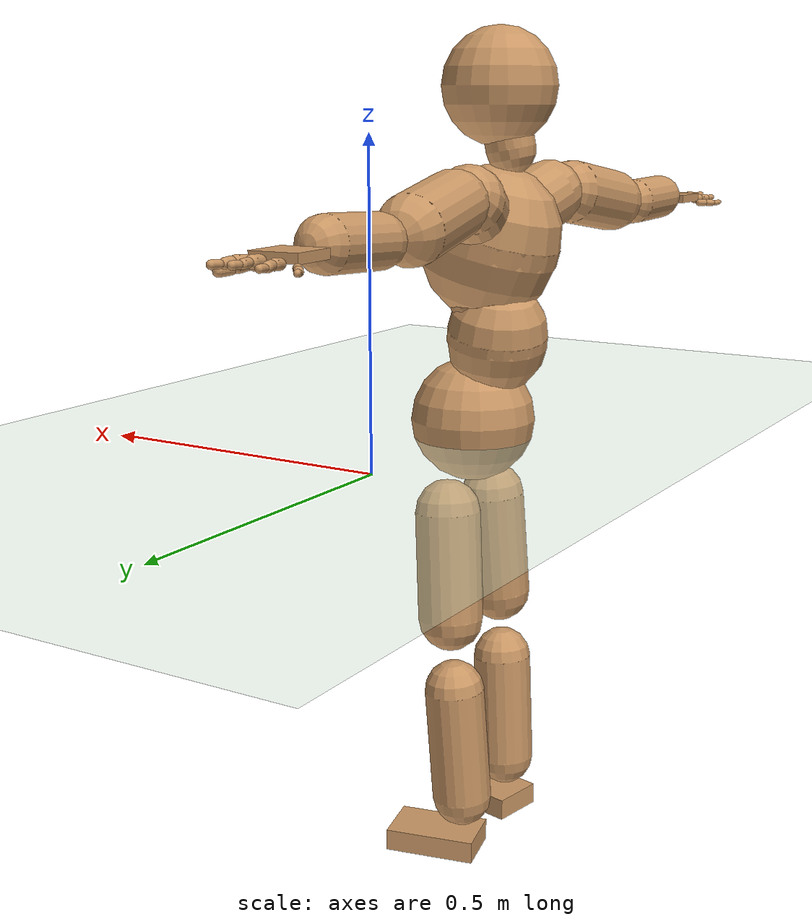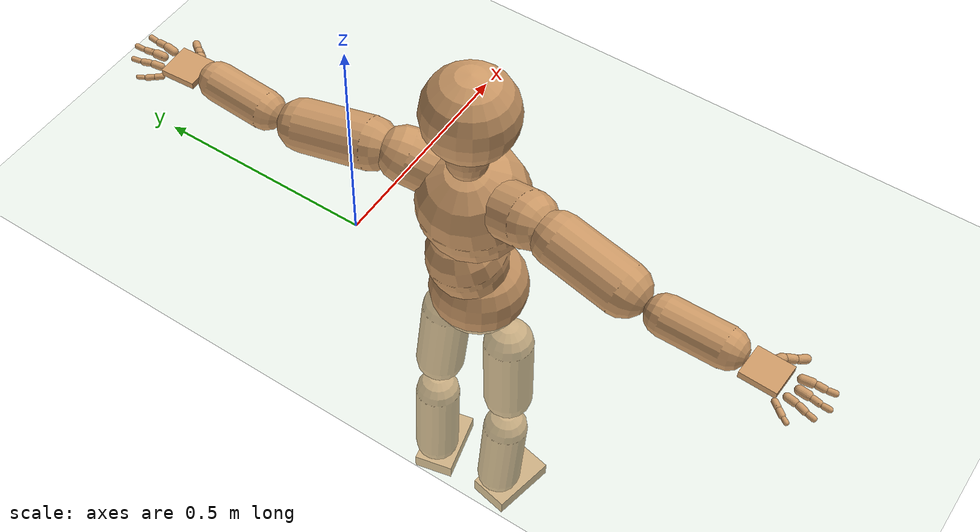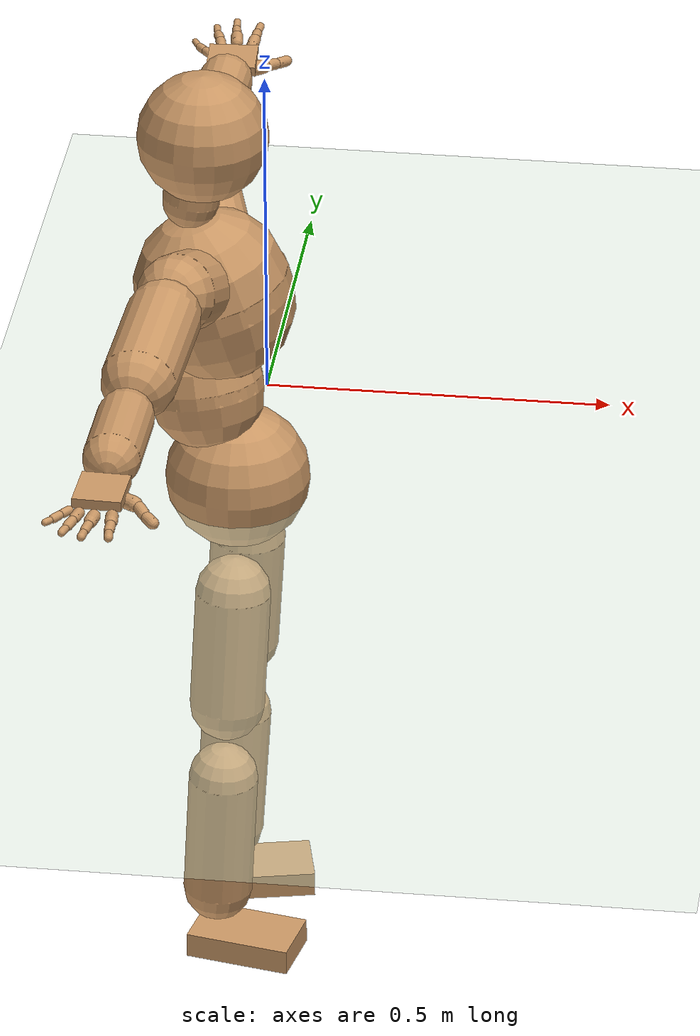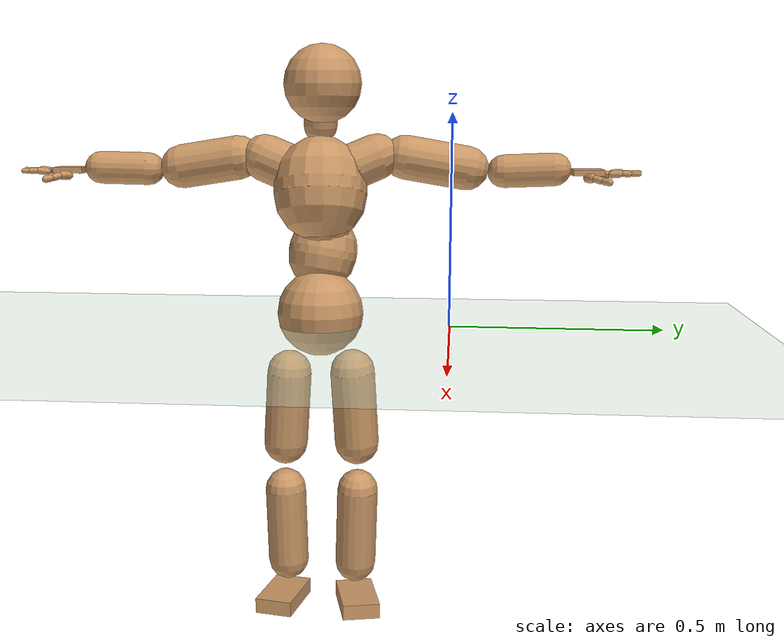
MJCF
<mujoco model="humanoid">
  <compiler coordinate="local" angle="radian"/>
  <default>
    <joint damping="0.0" armature="0.01" stiffness="0.0" limited="true"/>
    <geom conaffinity="1" condim="3" contype="7" margin="0.001" rgba="0.8 0.6 .4 1"/>
  </default>
  <asset>
    <texture type="skybox" builtin="gradient" rgb1=".4 .5 .6" rgb2="0 0 0" width="100" height="100"/>
    <texture builtin="flat" height="1278" mark="cross" markrgb="1 1 1" name="texgeom" random="0.01" rgb1="0.8 0.6 0.4" rgb2="0.8 0.6 0.4" type="cube" width="127"/>
    <texture builtin="checker" height="100" name="texplane" rgb1="0 0 0" rgb2="0.8 0.8 0.8" type="2d" width="100"/>
    <material name="MatPlane" reflectance="0.5" shininess="1" specular="1" texrepeat="60 60" texture="texplane"/>
    <material name="geom" texture="texgeom" texuniform="true"/>
  </asset>
  <worldbody>
    <light cutoff="100" diffuse="1 1 1" dir="-0 0 -1.3" directional="true" exponent="1" pos="0 0 1.3" specular=".1 .1 .1"/>
    <geom conaffinity="1" condim="3" name="floor" pos="0 0 0" rgba="0.8 0.9 0.8 1" size="100 100 .2" type="plane" material="MatPlane"/>
    <body name="Pelvis" pos="0.0002 -0.3093 0.0293">
      <freejoint name="Pelvis"/>
      <geom type="sphere" contype="1" conaffinity="1" density="500" size="0.1035" pos="0.0000 0.0000 0.0000" name="Pelvis"/>
      <body name="L_Hip" pos="0.0069 0.0745 -0.0832">
        <joint name="L_Hip_x" type="hinge" pos="0 0 0" axis="1 0 0" stiffness="800" damping="80" armature="0.02" range="-180.0000 180.0000"/>
        <joint name="L_Hip_y" type="hinge" pos="0 0 0" axis="0 1 0" stiffness="800" damping="80" armature="0.02" range="-180.0000 180.0000"/>
        <joint name="L_Hip_z" type="hinge" pos="0 0 0" axis="0 0 1" stiffness="800" damping="80" armature="0.02" range="-180.0000 180.0000"/>
        <geom type="capsule" contype="1" conaffinity="1" density="500" fromto="-0.0041 0.0032 -0.0605 -0.0164 0.0128 -0.2419" size="0.054" name="L_Hip"/>
        <body name="L_Knee" pos="-0.0205 0.0159 -0.3024">
          <joint name="L_Knee_x" type="hinge" pos="0 0 0" axis="1 0 0" stiffness="800" damping="80" armature="0.02" range="-180.0000 180.0000"/>
          <joint name="L_Knee_y" type="hinge" pos="0 0 0" axis="0 1 0" stiffness="800" damping="80" armature="0.02" range="-180.0000 180.0000"/>
          <joint name="L_Knee_z" type="hinge" pos="0 0 0" axis="0 0 1" stiffness="800" damping="80" armature="0.02" range="-180.0000 180.0000"/>
          <geom type="capsule" contype="1" conaffinity="1" density="500" fromto="-0.0041 -0.0022 -0.0651 -0.0165 -0.0087 -0.2605" size="0.0501" name="L_Knee"/>
          <body name="L_Ankle" pos="-0.0206 -0.0109 -0.3257">
            <joint name="L_Ankle_x" type="hinge" pos="0 0 0" axis="1 0 0" stiffness="800" damping="80" armature="0.02" range="-180.0000 180.0000"/>
            <joint name="L_Ankle_y" type="hinge" pos="0 0 0" axis="0 1 0" stiffness="800" damping="80" armature="0.02" range="-180.0000 180.0000"/>
            <joint name="L_Ankle_z" type="hinge" pos="0 0 0" axis="0 0 1" stiffness="800" damping="80" armature="0.02" range="-180.0000 180.0000"/>
            <geom type="box" contype="1" conaffinity="1" density="500" pos="0.0489 0.0111 -0.0177" size="0.0762 0.0455 0.0184" quat="0.9938 0.0000 0.0000 0.1115" name="L_Ankle"/>
            <body name="L_Toe" pos="0.0978 0.0222 -0.0353">
              <joint name="L_Toe_x" type="hinge" pos="0 0 0" axis="1 0 0" stiffness="500" damping="50" armature="0.02" range="-180.0000 180.0000"/>
              <joint name="L_Toe_y" type="hinge" pos="0 0 0" axis="0 1 0" stiffness="500" damping="50" armature="0.02" range="-180.0000 180.0000"/>
              <joint name="L_Toe_z" type="hinge" pos="0 0 0" axis="0 0 1" stiffness="500" damping="50" armature="0.02" range="-180.0000 180.0000"/>
              <geom type="box" contype="1" conaffinity="1" density="500" pos="0.0000 0.0000 0.0192" size="0.0009 0.0022 0.001" quat="0.9929 0.0000 0.0000 0.1188" name="L_Toe"/>
            </body>
          </body>
        </body>
      </body>
      <body name="R_Hip" pos="0.0054 -0.0726 -0.0887">
        <joint name="R_Hip_x" type="hinge" pos="0 0 0" axis="1 0 0" stiffness="800" damping="80" armature="0.02" range="-180.0000 180.0000"/>
        <joint name="R_Hip_y" type="hinge" pos="0 0 0" axis="0 1 0" stiffness="800" damping="80" armature="0.02" range="-180.0000 180.0000"/>
        <joint name="R_Hip_z" type="hinge" pos="0 0 0" axis="0 0 1" stiffness="800" damping="80" armature="0.02" range="-180.0000 180.0000"/>
        <geom type="capsule" contype="1" conaffinity="1" density="500" fromto="-0.0029 -0.0040 -0.0598 -0.0116 -0.0160 -0.2391" size="0.0538" name="R_Hip"/>
        <body name="R_Knee" pos="-0.0145 -0.02 -0.2989">
          <joint name="R_Knee_x" type="hinge" pos="0 0 0" axis="1 0 0" stiffness="800" damping="80" armature="0.02" range="-180.0000 180.0000"/>
          <joint name="R_Knee_y" type="hinge" pos="0 0 0" axis="0 1 0" stiffness="800" damping="80" armature="0.02" range="-180.0000 180.0000"/>
          <joint name="R_Knee_z" type="hinge" pos="0 0 0" axis="0 0 1" stiffness="800" damping="80" armature="0.02" range="-180.0000 180.0000"/>
          <geom type="capsule" contype="1" conaffinity="1" density="500" fromto="-0.0034 0.0012 -0.0635 -0.0138 0.0049 -0.2539" size="0.0501" name="R_Knee"/>
          <body name="R_Ankle" pos="-0.0172 0.0061 -0.3174">
            <joint name="R_Ankle_x" type="hinge" pos="0 0 0" axis="1 0 0" stiffness="800" damping="80" armature="0.02" range="-180.0000 180.0000"/>
            <joint name="R_Ankle_y" type="hinge" pos="0 0 0" axis="0 1 0" stiffness="800" damping="80" armature="0.02" range="-180.0000 180.0000"/>
            <joint name="R_Ankle_z" type="hinge" pos="0 0 0" axis="0 0 1" stiffness="800" damping="80" armature="0.02" range="-180.0000 180.0000"/>
            <geom type="box" contype="1" conaffinity="1" density="500" pos="0.0461 -0.0093 -0.0193" size="0.0762 0.0455 0.0184" quat="0.9951 0.0000 0.0000 -0.0989" name="R_Ankle"/>
            <body name="R_Toe" pos="0.0923 -0.0185 -0.0387">
              <joint name="R_Toe_x" type="hinge" pos="0 0 0" axis="1 0 0" stiffness="500" damping="50" armature="0.02" range="-180.0000 180.0000"/>
              <joint name="R_Toe_y" type="hinge" pos="0 0 0" axis="0 1 0" stiffness="500" damping="50" armature="0.02" range="-180.0000 180.0000"/>
              <joint name="R_Toe_z" type="hinge" pos="0 0 0" axis="0 0 1" stiffness="500" damping="50" armature="0.02" range="-180.0000 180.0000"/>
              <geom type="box" contype="1" conaffinity="1" density="500" pos="0.0000 0.0000 0.0209" size="0.0009 0.0022 0.001" quat="0.9962 0.0000 0.0000 -0.0867" name="R_Toe"/>
            </body>
          </body>
        </body>
      </body>
      <body name="Torso" pos="-0.0372 -0.0061 0.0956">
        <joint name="Torso_x" type="hinge" pos="0 0 0" axis="1 0 0" stiffness="1000" damping="100" armature="0.02" range="-180.0000 180.0000"/>
        <joint name="Torso_y" type="hinge" pos="0 0 0" axis="0 1 0" stiffness="1000" damping="100" armature="0.02" range="-180.0000 180.0000"/>
        <joint name="Torso_z" type="hinge" pos="0 0 0" axis="0 0 1" stiffness="1000" damping="100" armature="0.02" range="-180.0000 180.0000"/>
        <geom type="capsule" contype="1" conaffinity="1" density="500" fromto="-0.0088 0.0090 0.0538 -0.0058 0.0060 0.0359" size="0.0825" name="Torso"/>
        <body name="Spine" pos="-0.0146 0.0151 0.0897">
          <joint name="Spine_x" type="hinge" pos="0 0 0" axis="1 0 0" stiffness="1000" damping="100" armature="0.02" range="-180.0000 180.0000"/>
          <joint name="Spine_y" type="hinge" pos="0 0 0" axis="0 1 0" stiffness="1000" damping="100" armature="0.02" range="-180.0000 180.0000"/>
          <joint name="Spine_z" type="hinge" pos="0 0 0" axis="0 0 1" stiffness="1000" damping="100" armature="0.02" range="-180.0000 180.0000"/>
          <geom type="capsule" contype="1" conaffinity="1" density="500" fromto="0.0243 -0.0053 0.0227 0.0162 -0.0036 0.0151" size="0.0661" name="Spine"/>
          <body name="Chest" pos="0.0406 -0.0089 0.0379">
            <joint name="Chest_x" type="hinge" pos="0 0 0" axis="1 0 0" stiffness="1000" damping="100" armature="0.02" range="-180.0000 180.0000"/>
            <joint name="Chest_y" type="hinge" pos="0 0 0" axis="0 1 0" stiffness="1000" damping="100" armature="0.02" range="-180.0000 180.0000"/>
            <joint name="Chest_z" type="hinge" pos="0 0 0" axis="0 0 1" stiffness="1000" damping="100" armature="0.02" range="-180.0000 180.0000"/>
            <geom type="capsule" contype="1" conaffinity="1" density="500" fromto="-0.0228 -0.0020 0.0832 -0.0152 -0.0013 0.0555" size="0.1113" name="Chest"/>
            <body name="Neck" pos="-0.0548 -0.0065 0.1923">
              <joint name="Neck_x" type="hinge" pos="0 0 0" axis="1 0 0" stiffness="500" damping="50" armature="0.02" range="-180.0000 180.0000"/>
              <joint name="Neck_y" type="hinge" pos="0 0 0" axis="0 1 0" stiffness="500" damping="50" armature="0.02" range="-180.0000 180.0000"/>
              <joint name="Neck_z" type="hinge" pos="0 0 0" axis="0 0 1" stiffness="500" damping="50" armature="0.02" range="-180.0000 180.0000"/>
              <geom type="capsule" contype="1" conaffinity="1" density="500" fromto="0.0043 0.0018 0.0243 0.0172 0.0074 0.0971" size="0.0402" name="Neck"/>
              <body name="Head" pos="0.0215 0.0092 0.1214">
                <joint name="Head_x" type="hinge" pos="0 0 0" axis="1 0 0" stiffness="500" damping="50" armature="0.02" range="-180.0000 180.0000"/>
                <joint name="Head_y" type="hinge" pos="0 0 0" axis="0 1 0" stiffness="500" damping="50" armature="0.02" range="-180.0000 180.0000"/>
                <joint name="Head_z" type="hinge" pos="0 0 0" axis="0 0 1" stiffness="500" damping="50" armature="0.02" range="-180.0000 180.0000"/>
                <geom type="sphere" contype="1" conaffinity="1" density="500" size="0.0928" pos="0.0000 0.0000 0.0000" name="Head"/>
              </body>
            </body>
            <body name="L_Thorax" pos="-0.0257 0.0566 0.1138">
              <joint name="L_Thorax_x" type="hinge" pos="0 0 0" axis="1 0 0" stiffness="500" damping="50" armature="0.02" range="-180.0000 180.0000"/>
              <joint name="L_Thorax_y" type="hinge" pos="0 0 0" axis="0 1 0" stiffness="500" damping="50" armature="0.02" range="-180.0000 180.0000"/>
              <joint name="L_Thorax_z" type="hinge" pos="0 0 0" axis="0 0 1" stiffness="500" damping="50" armature="0.02" range="-180.0000 180.0000"/>
              <geom type="capsule" contype="1" conaffinity="1" density="500" fromto="-0.0063 0.0182 0.0076 -0.0254 0.0728 0.0305" size="0.0549" name="L_Thorax"/>
              <body name="L_Shoulder" pos="-0.0317 0.091 0.0381">
                <joint name="L_Shoulder_x" type="hinge" pos="0 0 0" axis="1 0 0" stiffness="500" damping="50" armature="0.02" range="-180.0000 180.0000"/>
                <joint name="L_Shoulder_y" type="hinge" pos="0 0 0" axis="0 1 0" stiffness="500" damping="50" armature="0.02" range="-180.0000 180.0000"/>
                <joint name="L_Shoulder_z" type="hinge" pos="0 0 0" axis="0 0 1" stiffness="500" damping="50" armature="0.02" range="-180.0000 180.0000"/>
                <geom type="capsule" contype="1" conaffinity="1" density="500" fromto="-0.0055 0.0491 -0.0088 -0.0221 0.1962 -0.0350" size="0.0525" name="L_Shoulder"/>
                <body name="L_Elbow" pos="-0.0276 0.2453 -0.0438">
                  <joint name="L_Elbow_x" type="hinge" pos="0 0 0" axis="1 0 0" stiffness="500" damping="50" armature="0.02" range="-720.0000 720.0000"/>
                  <joint name="L_Elbow_y" type="hinge" pos="0 0 0" axis="0 1 0" stiffness="500" damping="50" armature="0.02" range="-720.0000 720.0000"/>
                  <joint name="L_Elbow_z" type="hinge" pos="0 0 0" axis="0 0 1" stiffness="500" damping="50" armature="0.02" range="-720.0000 720.0000"/>
                  <geom type="capsule" contype="1" conaffinity="1" density="500" fromto="0.0012 0.0396 0.0016 0.0048 0.1584 0.0065" size="0.0395" name="L_Elbow"/>
                  <body name="L_Wrist" pos="0.006 0.198 0.0081">
                    <joint name="L_Wrist_x" type="hinge" pos="0 0 0" axis="1 0 0" stiffness="300" damping="30" armature="0.02" range="-180.0000 180.0000"/>
                    <joint name="L_Wrist_y" type="hinge" pos="0 0 0" axis="0 1 0" stiffness="300" damping="30" armature="0.02" range="-180.0000 180.0000"/>
                    <joint name="L_Wrist_z" type="hinge" pos="0 0 0" axis="0 0 1" stiffness="300" damping="30" armature="0.02" range="-180.0000 180.0000"/>
                    <geom type="box" contype="1" conaffinity="1" density="500" pos="-0.0022 0.0366 -0.0074" size="0.0366 0.0359 0.007" quat="0.7279 0.0000 0.0000 -0.6856" name="L_Wrist"/>
                    <body name="L_Index1" pos="0.0191 0.0866 -0.0122">
                      <joint name="L_Index1_x" type="hinge" pos="0 0 0" axis="1 0 0" stiffness="100" damping="10" armature="0.02" range="-180.0000 180.0000"/>
                      <joint name="L_Index1_y" type="hinge" pos="0 0 0" axis="0 1 0" stiffness="100" damping="10" armature="0.02" range="-180.0000 180.0000"/>
                      <joint name="L_Index1_z" type="hinge" pos="0 0 0" axis="0 0 1" stiffness="100" damping="10" armature="0.02" range="-180.0000 180.0000"/>
                      <geom type="capsule" contype="1" conaffinity="1" density="500" fromto="0.0005 0.0058 0.0006 0.0020 0.0232 0.0022" size="0.0087" name="L_Index1"/>
                      <body name="L_Index2" pos="0.0025 0.029 0.0028">
                        <joint name="L_Index2_x" type="hinge" pos="0 0 0" axis="1 0 0" stiffness="100" damping="10" armature="0.02" range="-180.0000 180.0000"/>
                        <joint name="L_Index2_y" type="hinge" pos="0 0 0" axis="0 1 0" stiffness="100" damping="10" armature="0.02" range="-180.0000 180.0000"/>
                        <joint name="L_Index2_z" type="hinge" pos="0 0 0" axis="0 0 1" stiffness="100" damping="10" armature="0.02" range="-180.0000 180.0000"/>
                        <geom type="capsule" contype="1" conaffinity="1" density="500" fromto="0.0001 0.0041 -0.0002 0.0002 0.0164 -0.0010" size="0.0071" name="L_Index2"/>
                        <body name="L_Index3" pos="0.0003 0.0206 -0.0012">
                          <joint name="L_Index3_x" type="hinge" pos="0 0 0" axis="1 0 0" stiffness="100" damping="10" armature="0.02" range="-180.0000 180.0000"/>
                          <joint name="L_Index3_y" type="hinge" pos="0 0 0" axis="0 1 0" stiffness="100" damping="10" armature="0.02" range="-180.0000 180.0000"/>
                          <joint name="L_Index3_z" type="hinge" pos="0 0 0" axis="0 0 1" stiffness="100" damping="10" armature="0.02" range="-180.0000 180.0000"/>
                          <geom type="capsule" contype="1" conaffinity="1" density="500" fromto="0.0005 0.0045 0.0002 0.0018 0.0180 0.0006" size="0.0059" name="L_Index3"/>
                        </body>
                      </body>
                    </body>
                    <body name="L_Middle1" pos="-0.0029 0.0929 -0.01">
                      <joint name="L_Middle1_x" type="hinge" pos="0 0 0" axis="1 0 0" stiffness="100" damping="10" armature="0.02" range="-180.0000 180.0000"/>
                      <joint name="L_Middle1_y" type="hinge" pos="0 0 0" axis="0 1 0" stiffness="100" damping="10" armature="0.02" range="-180.0000 180.0000"/>
                      <joint name="L_Middle1_z" type="hinge" pos="0 0 0" axis="0 0 1" stiffness="100" damping="10" armature="0.02" range="-180.0000 180.0000"/>
                      <geom type="capsule" contype="1" conaffinity="1" density="500" fromto="-0.0008 0.0055 0.0003 -0.0030 0.0220 0.0012" size="0.009" name="L_Middle1"/>
                      <body name="L_Middle2" pos="-0.0038 0.0274 0.0015">
                        <joint name="L_Middle2_x" type="hinge" pos="0 0 0" axis="1 0 0" stiffness="100" damping="10" armature="0.02" range="-180.0000 180.0000"/>
                        <joint name="L_Middle2_y" type="hinge" pos="0 0 0" axis="0 1 0" stiffness="100" damping="10" armature="0.02" range="-180.0000 180.0000"/>
                        <joint name="L_Middle2_z" type="hinge" pos="0 0 0" axis="0 0 1" stiffness="100" damping="10" armature="0.02" range="-180.0000 180.0000"/>
                        <geom type="capsule" contype="1" conaffinity="1" density="500" fromto="-0.0007 0.0042 -0.0001 -0.0029 0.0169 -0.0005" size="0.0066" name="L_Middle2"/>
                        <body name="L_Middle3" pos="-0.0036 0.0212 -0.0006">
                          <joint name="L_Middle3_x" type="hinge" pos="0 0 0" axis="1 0 0" stiffness="100" damping="10" armature="0.02" range="-180.0000 180.0000"/>
                          <joint name="L_Middle3_y" type="hinge" pos="0 0 0" axis="0 1 0" stiffness="100" damping="10" armature="0.02" range="-180.0000 180.0000"/>
                          <joint name="L_Middle3_z" type="hinge" pos="0 0 0" axis="0 0 1" stiffness="100" damping="10" armature="0.02" range="-180.0000 180.0000"/>
                          <geom type="capsule" contype="1" conaffinity="1" density="500" fromto="-0.0003 0.0046 0.0003 -0.0013 0.0185 0.0011" size="0.0055" name="L_Middle3"/>
                        </body>
                      </body>
                    </body>
                    <body name="L_Pinky1" pos="-0.0388 0.0706 -0.0183">
                      <joint name="L_Pinky1_x" type="hinge" pos="0 0 0" axis="1 0 0" stiffness="100" damping="10" armature="0.02" range="-180.0000 180.0000"/>
                      <joint name="L_Pinky1_y" type="hinge" pos="0 0 0" axis="0 1 0" stiffness="100" damping="10" armature="0.02" range="-180.0000 180.0000"/>
                      <joint name="L_Pinky1_z" type="hinge" pos="0 0 0" axis="0 0 1" stiffness="100" damping="10" armature="0.02" range="-180.0000 180.0000"/>
                      <geom type="capsule" contype="1" conaffinity="1" density="500" fromto="-0.0023 0.0027 -0.0001 -0.0090 0.0110 -0.0003" size="0.0063" name="L_Pinky1"/>
                      <body name="L_Pinky2" pos="-0.0113 0.0137 -0.0004">
                        <joint name="L_Pinky2_x" type="hinge" pos="0 0 0" axis="1 0 0" stiffness="100" damping="10" armature="0.02" range="-180.0000 180.0000"/>
                        <joint name="L_Pinky2_y" type="hinge" pos="0 0 0" axis="0 1 0" stiffness="100" damping="10" armature="0.02" range="-180.0000 180.0000"/>
                        <joint name="L_Pinky2_z" type="hinge" pos="0 0 0" axis="0 0 1" stiffness="100" damping="10" armature="0.02" range="-180.0000 180.0000"/>
                        <geom type="capsule" contype="1" conaffinity="1" density="500" fromto="-0.0021 0.0028 -0.0002 -0.0086 0.0111 -0.0008" size="0.0062" name="L_Pinky2"/>
                        <body name="L_Pinky3" pos="-0.0107 0.0139 -0.0009">
                          <joint name="L_Pinky3_x" type="hinge" pos="0 0 0" axis="1 0 0" stiffness="100" damping="10" armature="0.02" range="-180.0000 180.0000"/>
                          <joint name="L_Pinky3_y" type="hinge" pos="0 0 0" axis="0 1 0" stiffness="100" damping="10" armature="0.02" range="-180.0000 180.0000"/>
                          <joint name="L_Pinky3_z" type="hinge" pos="0 0 0" axis="0 0 1" stiffness="100" damping="10" armature="0.02" range="-180.0000 180.0000"/>
                          <geom type="capsule" contype="1" conaffinity="1" density="500" fromto="-0.0017 0.0032 0.0002 -0.0070 0.0127 0.0008" size="0.0046" name="L_Pinky3"/>
                        </body>
                      </body>
                    </body>
                    <body name="L_Ring1" pos="-0.0244 0.0823 -0.0131">
                      <joint name="L_Ring1_x" type="hinge" pos="0 0 0" axis="1 0 0" stiffness="100" damping="10" armature="0.02" range="-180.0000 180.0000"/>
                      <joint name="L_Ring1_y" type="hinge" pos="0 0 0" axis="0 1 0" stiffness="100" damping="10" armature="0.02" range="-180.0000 180.0000"/>
                      <joint name="L_Ring1_z" type="hinge" pos="0 0 0" axis="0 0 1" stiffness="100" damping="10" armature="0.02" range="-180.0000 180.0000"/>
                      <geom type="capsule" contype="1" conaffinity="1" density="500" fromto="-0.0010 0.0050 0.0003 -0.0042 0.0200 0.0013" size="0.0077" name="L_Ring1"/>
                      <body name="L_Ring2" pos="-0.0052 0.025 0.0016">
                        <joint name="L_Ring2_x" type="hinge" pos="0 0 0" axis="1 0 0" stiffness="100" damping="10" armature="0.02" range="-180.0000 180.0000"/>
                        <joint name="L_Ring2_y" type="hinge" pos="0 0 0" axis="0 1 0" stiffness="100" damping="10" armature="0.02" range="-180.0000 180.0000"/>
                        <joint name="L_Ring2_z" type="hinge" pos="0 0 0" axis="0 0 1" stiffness="100" damping="10" armature="0.02" range="-180.0000 180.0000"/>
                        <geom type="capsule" contype="1" conaffinity="1" density="500" fromto="-0.0013 0.0041 -0.0002 -0.0053 0.0164 -0.0009" size="0.007" name="L_Ring2"/>
                        <body name="L_Ring3" pos="-0.0066 0.0204 -0.0011">
                          <joint name="L_Ring3_x" type="hinge" pos="0 0 0" axis="1 0 0" stiffness="100" damping="10" armature="0.02" range="-180.0000 180.0000"/>
                          <joint name="L_Ring3_y" type="hinge" pos="0 0 0" axis="0 1 0" stiffness="100" damping="10" armature="0.02" range="-180.0000 180.0000"/>
                          <joint name="L_Ring3_z" type="hinge" pos="0 0 0" axis="0 0 1" stiffness="100" damping="10" armature="0.02" range="-180.0000 180.0000"/>
                          <geom type="capsule" contype="1" conaffinity="1" density="500" fromto="-0.0009 0.0045 0.0002 -0.0037 0.0180 0.0007" size="0.0053" name="L_Ring3"/>
                        </body>
                      </body>
                    </body>
                    <body name="L_Thumb1" pos="0.025 0.0336 -0.0202">
                      <joint name="L_Thumb1_x" type="hinge" pos="0 0 0" axis="1 0 0" stiffness="100" damping="10" armature="0.02" range="-180.0000 180.0000"/>
                      <joint name="L_Thumb1_y" type="hinge" pos="0 0 0" axis="0 1 0" stiffness="100" damping="10" armature="0.02" range="-180.0000 180.0000"/>
                      <joint name="L_Thumb1_z" type="hinge" pos="0 0 0" axis="0 0 1" stiffness="100" damping="10" armature="0.02" range="-180.0000 180.0000"/>
                      <geom type="capsule" contype="1" conaffinity="1" density="500" fromto="0.0044 0.0029 0.0002 0.0175 0.0116 0.0009" size="0.0108" name="L_Thumb1"/>
                      <body name="L_Thumb2" pos="0.0219 0.0145 0.0011">
                        <joint name="L_Thumb2_x" type="hinge" pos="0 0 0" axis="1 0 0" stiffness="100" damping="10" armature="0.02" range="-180.0000 180.0000"/>
                        <joint name="L_Thumb2_y" type="hinge" pos="0 0 0" axis="0 1 0" stiffness="100" damping="10" armature="0.02" range="-180.0000 180.0000"/>
                        <joint name="L_Thumb2_z" type="hinge" pos="0 0 0" axis="0 0 1" stiffness="100" damping="10" armature="0.02" range="-180.0000 180.0000"/>
                        <geom type="capsule" contype="1" conaffinity="1" density="500" fromto="0.0026 0.0035 -0.0011 0.0104 0.0142 -0.0043" size="0.0085" name="L_Thumb2"/>
                        <body name="L_Thumb3" pos="0.0129 0.0177 -0.0054">
                          <joint name="L_Thumb3_x" type="hinge" pos="0 0 0" axis="1 0 0" stiffness="100" damping="10" armature="0.02" range="-180.0000 180.0000"/>
                          <joint name="L_Thumb3_y" type="hinge" pos="0 0 0" axis="0 1 0" stiffness="100" damping="10" armature="0.02" range="-180.0000 180.0000"/>
                          <joint name="L_Thumb3_z" type="hinge" pos="0 0 0" axis="0 0 1" stiffness="100" damping="10" armature="0.02" range="-180.0000 180.0000"/>
                          <geom type="capsule" contype="1" conaffinity="1" density="500" fromto="0.0030 0.0039 -0.0007 0.0120 0.0158 -0.0027" size="0.0081" name="L_Thumb3"/>
                        </body>
                      </body>
                    </body>
                  </body>
                </body>
              </body>
            </body>
            <body name="R_Thorax" pos="-0.0334 -0.0599 0.11">
              <joint name="R_Thorax_x" type="hinge" pos="0 0 0" axis="1 0 0" stiffness="500" damping="50" armature="0.02" range="-180.0000 180.0000"/>
              <joint name="R_Thorax_y" type="hinge" pos="0 0 0" axis="0 1 0" stiffness="500" damping="50" armature="0.02" range="-180.0000 180.0000"/>
              <joint name="R_Thorax_z" type="hinge" pos="0 0 0" axis="0 0 1" stiffness="500" damping="50" armature="0.02" range="-180.0000 180.0000"/>
              <geom type="capsule" contype="1" conaffinity="1" density="500" fromto="-0.0045 -0.0197 0.0077 -0.0182 -0.0787 0.0308" size="0.0562" name="R_Thorax"/>
              <body name="R_Shoulder" pos="-0.0227 -0.0984 0.0384">
                <joint name="R_Shoulder_x" type="hinge" pos="0 0 0" axis="1 0 0" stiffness="500" damping="50" armature="0.02" range="-180.0000 180.0000"/>
                <joint name="R_Shoulder_y" type="hinge" pos="0 0 0" axis="0 1 0" stiffness="500" damping="50" armature="0.02" range="-180.0000 180.0000"/>
                <joint name="R_Shoulder_z" type="hinge" pos="0 0 0" axis="0 0 1" stiffness="500" damping="50" armature="0.02" range="-180.0000 180.0000"/>
                <geom type="capsule" contype="1" conaffinity="1" density="500" fromto="-0.0044 -0.0471 -0.0075 -0.0176 -0.1886 -0.0300" size="0.053" name="R_Shoulder"/>
                <body name="R_Elbow" pos="-0.022 -0.2357 -0.0374">
                  <joint name="R_Elbow_x" type="hinge" pos="0 0 0" axis="1 0 0" stiffness="500" damping="50" armature="0.02" range="-720.0000 720.0000"/>
                  <joint name="R_Elbow_y" type="hinge" pos="0 0 0" axis="0 1 0" stiffness="500" damping="50" armature="0.02" range="-720.0000 720.0000"/>
                  <joint name="R_Elbow_z" type="hinge" pos="0 0 0" axis="0 0 1" stiffness="500" damping="50" armature="0.02" range="-720.0000 720.0000"/>
                  <geom type="capsule" contype="1" conaffinity="1" density="500" fromto="-0.0005 -0.0396 0.0008 -0.0019 -0.1585 0.0034" size="0.0396" name="R_Elbow"/>
                  <body name="R_Wrist" pos="-0.0024 -0.1982 0.0042">
                    <joint name="R_Wrist_x" type="hinge" pos="0 0 0" axis="1 0 0" stiffness="300" damping="30" armature="0.02" range="-180.0000 180.0000"/>
                    <joint name="R_Wrist_y" type="hinge" pos="0 0 0" axis="0 1 0" stiffness="300" damping="30" armature="0.02" range="-180.0000 180.0000"/>
                    <joint name="R_Wrist_z" type="hinge" pos="0 0 0" axis="0 0 1" stiffness="300" damping="30" armature="0.02" range="-180.0000 180.0000"/>
                    <geom type="box" contype="1" conaffinity="1" density="500" pos="-0.0015 -0.0362 -0.0069" size="0.0366 0.0334 0.0073" quat="0.7212 0.0000 0.0000 0.6928" name="R_Wrist"/>
                    <body name="R_Index1" pos="0.0206 -0.0857 -0.0112">
                      <joint name="R_Index1_x" type="hinge" pos="0 0 0" axis="1 0 0" stiffness="100" damping="10" armature="0.02" range="-180.0000 180.0000"/>
                      <joint name="R_Index1_y" type="hinge" pos="0 0 0" axis="0 1 0" stiffness="100" damping="10" armature="0.02" range="-180.0000 180.0000"/>
                      <joint name="R_Index1_z" type="hinge" pos="0 0 0" axis="0 0 1" stiffness="100" damping="10" armature="0.02" range="-180.0000 180.0000"/>
                      <geom type="capsule" contype="1" conaffinity="1" density="500" fromto="0.0005 -0.0058 0.0006 0.0020 -0.0232 0.0022" size="0.0087" name="R_Index1"/>
                      <body name="R_Index2" pos="0.0025 -0.029 0.0028">
                        <joint name="R_Index2_x" type="hinge" pos="0 0 0" axis="1 0 0" stiffness="100" damping="10" armature="0.02" range="-180.0000 180.0000"/>
                        <joint name="R_Index2_y" type="hinge" pos="0 0 0" axis="0 1 0" stiffness="100" damping="10" armature="0.02" range="-180.0000 180.0000"/>
                        <joint name="R_Index2_z" type="hinge" pos="0 0 0" axis="0 0 1" stiffness="100" damping="10" armature="0.02" range="-180.0000 180.0000"/>
                        <geom type="capsule" contype="1" conaffinity="1" density="500" fromto="0.0001 -0.0041 -0.0002 0.0002 -0.0164 -0.0010" size="0.0071" name="R_Index2"/>
                        <body name="R_Index3" pos="0.0003 -0.0206 -0.0012">
                          <joint name="R_Index3_x" type="hinge" pos="0 0 0" axis="1 0 0" stiffness="100" damping="10" armature="0.02" range="-180.0000 180.0000"/>
                          <joint name="R_Index3_y" type="hinge" pos="0 0 0" axis="0 1 0" stiffness="100" damping="10" armature="0.02" range="-180.0000 180.0000"/>
                          <joint name="R_Index3_z" type="hinge" pos="0 0 0" axis="0 0 1" stiffness="100" damping="10" armature="0.02" range="-180.0000 180.0000"/>
                          <geom type="capsule" contype="1" conaffinity="1" density="500" fromto="0.0005 -0.0037 0.0002 0.0018 -0.0148 0.0006" size="0.0062" name="R_Index3"/>
                        </body>
                      </body>
                    </body>
                    <body name="R_Middle1" pos="-0.0014 -0.092 -0.009">
                      <joint name="R_Middle1_x" type="hinge" pos="0 0 0" axis="1 0 0" stiffness="100" damping="10" armature="0.02" range="-180.0000 180.0000"/>
                      <joint name="R_Middle1_y" type="hinge" pos="0 0 0" axis="0 1 0" stiffness="100" damping="10" armature="0.02" range="-180.0000 180.0000"/>
                      <joint name="R_Middle1_z" type="hinge" pos="0 0 0" axis="0 0 1" stiffness="100" damping="10" armature="0.02" range="-180.0000 180.0000"/>
                      <geom type="capsule" contype="1" conaffinity="1" density="500" fromto="-0.0008 -0.0055 0.0003 -0.0030 -0.0220 0.0012" size="0.009" name="R_Middle1"/>
                      <body name="R_Middle2" pos="-0.0038 -0.0274 0.0015">
                        <joint name="R_Middle2_x" type="hinge" pos="0 0 0" axis="1 0 0" stiffness="100" damping="10" armature="0.02" range="-180.0000 180.0000"/>
                        <joint name="R_Middle2_y" type="hinge" pos="0 0 0" axis="0 1 0" stiffness="100" damping="10" armature="0.02" range="-180.0000 180.0000"/>
                        <joint name="R_Middle2_z" type="hinge" pos="0 0 0" axis="0 0 1" stiffness="100" damping="10" armature="0.02" range="-180.0000 180.0000"/>
                        <geom type="capsule" contype="1" conaffinity="1" density="500" fromto="-0.0007 -0.0042 -0.0001 -0.0029 -0.0169 -0.0005" size="0.0066" name="R_Middle2"/>
                        <body name="R_Middle3" pos="-0.0036 -0.0212 -0.0006">
                          <joint name="R_Middle3_x" type="hinge" pos="0 0 0" axis="1 0 0" stiffness="100" damping="10" armature="0.02" range="-180.0000 180.0000"/>
                          <joint name="R_Middle3_y" type="hinge" pos="0 0 0" axis="0 1 0" stiffness="100" damping="10" armature="0.02" range="-180.0000 180.0000"/>
                          <joint name="R_Middle3_z" type="hinge" pos="0 0 0" axis="0 0 1" stiffness="100" damping="10" armature="0.02" range="-180.0000 180.0000"/>
                          <geom type="capsule" contype="1" conaffinity="1" density="500" fromto="-0.0003 -0.0038 0.0003 -0.0013 -0.0153 0.0011" size="0.0058" name="R_Middle3"/>
                        </body>
                      </body>
                    </body>
                    <body name="R_Pinky1" pos="-0.0373 -0.0697 -0.0173">
                      <joint name="R_Pinky1_x" type="hinge" pos="0 0 0" axis="1 0 0" stiffness="100" damping="10" armature="0.02" range="-180.0000 180.0000"/>
                      <joint name="R_Pinky1_y" type="hinge" pos="0 0 0" axis="0 1 0" stiffness="100" damping="10" armature="0.02" range="-180.0000 180.0000"/>
                      <joint name="R_Pinky1_z" type="hinge" pos="0 0 0" axis="0 0 1" stiffness="100" damping="10" armature="0.02" range="-180.0000 180.0000"/>
                      <geom type="capsule" contype="1" conaffinity="1" density="500" fromto="-0.0023 -0.0027 -0.0001 -0.0090 -0.0110 -0.0003" size="0.0063" name="R_Pinky1"/>
                      <body name="R_Pinky2" pos="-0.0113 -0.0137 -0.0004">
                        <joint name="R_Pinky2_x" type="hinge" pos="0 0 0" axis="1 0 0" stiffness="100" damping="10" armature="0.02" range="-180.0000 180.0000"/>
                        <joint name="R_Pinky2_y" type="hinge" pos="0 0 0" axis="0 1 0" stiffness="100" damping="10" armature="0.02" range="-180.0000 180.0000"/>
                        <joint name="R_Pinky2_z" type="hinge" pos="0 0 0" axis="0 0 1" stiffness="100" damping="10" armature="0.02" range="-180.0000 180.0000"/>
                        <geom type="capsule" contype="1" conaffinity="1" density="500" fromto="-0.0021 -0.0028 -0.0002 -0.0086 -0.0111 -0.0008" size="0.0062" name="R_Pinky2"/>
                        <body name="R_Pinky3" pos="-0.0107 -0.0139 -0.0009">
                          <joint name="R_Pinky3_x" type="hinge" pos="0 0 0" axis="1 0 0" stiffness="100" damping="10" armature="0.02" range="-180.0000 180.0000"/>
                          <joint name="R_Pinky3_y" type="hinge" pos="0 0 0" axis="0 1 0" stiffness="100" damping="10" armature="0.02" range="-180.0000 180.0000"/>
                          <joint name="R_Pinky3_z" type="hinge" pos="0 0 0" axis="0 0 1" stiffness="100" damping="10" armature="0.02" range="-180.0000 180.0000"/>
                          <geom type="capsule" contype="1" conaffinity="1" density="500" fromto="-0.0017 -0.0024 0.0002 -0.0070 -0.0095 0.0008" size="0.0049" name="R_Pinky3"/>
                        </body>
                      </body>
                    </body>
                    <body name="R_Ring1" pos="-0.0229 -0.0814 -0.0121">
                      <joint name="R_Ring1_x" type="hinge" pos="0 0 0" axis="1 0 0" stiffness="100" damping="10" armature="0.02" range="-180.0000 180.0000"/>
                      <joint name="R_Ring1_y" type="hinge" pos="0 0 0" axis="0 1 0" stiffness="100" damping="10" armature="0.02" range="-180.0000 180.0000"/>
                      <joint name="R_Ring1_z" type="hinge" pos="0 0 0" axis="0 0 1" stiffness="100" damping="10" armature="0.02" range="-180.0000 180.0000"/>
                      <geom type="capsule" contype="1" conaffinity="1" density="500" fromto="-0.0010 -0.0050 0.0003 -0.0042 -0.0200 0.0013" size="0.0077" name="R_Ring1"/>
                      <body name="R_Ring2" pos="-0.0052 -0.025 0.0016">
                        <joint name="R_Ring2_x" type="hinge" pos="0 0 0" axis="1 0 0" stiffness="100" damping="10" armature="0.02" range="-180.0000 180.0000"/>
                        <joint name="R_Ring2_y" type="hinge" pos="0 0 0" axis="0 1 0" stiffness="100" damping="10" armature="0.02" range="-180.0000 180.0000"/>
                        <joint name="R_Ring2_z" type="hinge" pos="0 0 0" axis="0 0 1" stiffness="100" damping="10" armature="0.02" range="-180.0000 180.0000"/>
                        <geom type="capsule" contype="1" conaffinity="1" density="500" fromto="-0.0013 -0.0041 -0.0002 -0.0053 -0.0164 -0.0009" size="0.007" name="R_Ring2"/>
                        <body name="R_Ring3" pos="-0.0066 -0.0204 -0.0011">
                          <joint name="R_Ring3_x" type="hinge" pos="0 0 0" axis="1 0 0" stiffness="100" damping="10" armature="0.02" range="-180.0000 180.0000"/>
                          <joint name="R_Ring3_y" type="hinge" pos="0 0 0" axis="0 1 0" stiffness="100" damping="10" armature="0.02" range="-180.0000 180.0000"/>
                          <joint name="R_Ring3_z" type="hinge" pos="0 0 0" axis="0 0 1" stiffness="100" damping="10" armature="0.02" range="-180.0000 180.0000"/>
                          <geom type="capsule" contype="1" conaffinity="1" density="500" fromto="-0.0009 -0.0037 0.0002 -0.0037 -0.0148 0.0007" size="0.0056" name="R_Ring3"/>
                        </body>
                      </body>
                    </body>
                    <body name="R_Thumb1" pos="0.0265 -0.0327 -0.0192">
                      <joint name="R_Thumb1_x" type="hinge" pos="0 0 0" axis="1 0 0" stiffness="100" damping="10" armature="0.02" range="-180.0000 180.0000"/>
                      <joint name="R_Thumb1_y" type="hinge" pos="0 0 0" axis="0 1 0" stiffness="100" damping="10" armature="0.02" range="-180.0000 180.0000"/>
                      <joint name="R_Thumb1_z" type="hinge" pos="0 0 0" axis="0 0 1" stiffness="100" damping="10" armature="0.02" range="-180.0000 180.0000"/>
                      <geom type="capsule" contype="1" conaffinity="1" density="500" fromto="0.0044 -0.0029 0.0002 0.0175 -0.0116 0.0009" size="0.0108" name="R_Thumb1"/>
                      <body name="R_Thumb2" pos="0.0219 -0.0145 0.0011">
                        <joint name="R_Thumb2_x" type="hinge" pos="0 0 0" axis="1 0 0" stiffness="100" damping="10" armature="0.02" range="-180.0000 180.0000"/>
                        <joint name="R_Thumb2_y" type="hinge" pos="0 0 0" axis="0 1 0" stiffness="100" damping="10" armature="0.02" range="-180.0000 180.0000"/>
                        <joint name="R_Thumb2_z" type="hinge" pos="0 0 0" axis="0 0 1" stiffness="100" damping="10" armature="0.02" range="-180.0000 180.0000"/>
                        <geom type="capsule" contype="1" conaffinity="1" density="500" fromto="0.0026 -0.0035 -0.0011 0.0104 -0.0142 -0.0043" size="0.0085" name="R_Thumb2"/>
                        <body name="R_Thumb3" pos="0.0129 -0.0177 -0.0054">
                          <joint name="R_Thumb3_x" type="hinge" pos="0 0 0" axis="1 0 0" stiffness="100" damping="10" armature="0.02" range="-180.0000 180.0000"/>
                          <joint name="R_Thumb3_y" type="hinge" pos="0 0 0" axis="0 1 0" stiffness="100" damping="10" armature="0.02" range="-180.0000 180.0000"/>
                          <joint name="R_Thumb3_z" type="hinge" pos="0 0 0" axis="0 0 1" stiffness="100" damping="10" armature="0.02" range="-180.0000 180.0000"/>
                          <geom type="capsule" contype="1" conaffinity="1" density="500" fromto="0.0030 -0.0031 -0.0007 0.0120 -0.0126 -0.0027" size="0.0084" name="R_Thumb3"/>
                        </body>
                      </body>
                    </body>
                  </body>
                </body>
              </body>
            </body>
          </body>
        </body>
      </body>
    </body>
  </worldbody>
  <actuator>
    <motor name="L_Hip_x" joint="L_Hip_x" gear="500"/>
    <motor name="L_Hip_y" joint="L_Hip_y" gear="500"/>
    <motor name="L_Hip_z" joint="L_Hip_z" gear="500"/>
    <motor name="L_Knee_x" joint="L_Knee_x" gear="500"/>
    <motor name="L_Knee_y" joint="L_Knee_y" gear="500"/>
    <motor name="L_Knee_z" joint="L_Knee_z" gear="500"/>
    <motor name="L_Ankle_x" joint="L_Ankle_x" gear="500"/>
    <motor name="L_Ankle_y" joint="L_Ankle_y" gear="500"/>
    <motor name="L_Ankle_z" joint="L_Ankle_z" gear="500"/>
    <motor name="L_Toe_x" joint="L_Toe_x" gear="500"/>
    <motor name="L_Toe_y" joint="L_Toe_y" gear="500"/>
    <motor name="L_Toe_z" joint="L_Toe_z" gear="500"/>
    <motor name="R_Hip_x" joint="R_Hip_x" gear="500"/>
    <motor name="R_Hip_y" joint="R_Hip_y" gear="500"/>
    <motor name="R_Hip_z" joint="R_Hip_z" gear="500"/>
    <motor name="R_Knee_x" joint="R_Knee_x" gear="500"/>
    <motor name="R_Knee_y" joint="R_Knee_y" gear="500"/>
    <motor name="R_Knee_z" joint="R_Knee_z" gear="500"/>
    <motor name="R_Ankle_x" joint="R_Ankle_x" gear="500"/>
    <motor name="R_Ankle_y" joint="R_Ankle_y" gear="500"/>
    <motor name="R_Ankle_z" joint="R_Ankle_z" gear="500"/>
    <motor name="R_Toe_x" joint="R_Toe_x" gear="500"/>
    <motor name="R_Toe_y" joint="R_Toe_y" gear="500"/>
    <motor name="R_Toe_z" joint="R_Toe_z" gear="500"/>
    <motor name="Torso_x" joint="Torso_x" gear="500"/>
    <motor name="Torso_y" joint="Torso_y" gear="500"/>
    <motor name="Torso_z" joint="Torso_z" gear="500"/>
    <motor name="Spine_x" joint="Spine_x" gear="500"/>
    <motor name="Spine_y" joint="Spine_y" gear="500"/>
    <motor name="Spine_z" joint="Spine_z" gear="500"/>
    <motor name="Chest_x" joint="Chest_x" gear="500"/>
    <motor name="Chest_y" joint="Chest_y" gear="500"/>
    <motor name="Chest_z" joint="Chest_z" gear="500"/>
    <motor name="Neck_x" joint="Neck_x" gear="500"/>
    <motor name="Neck_y" joint="Neck_y" gear="500"/>
    <motor name="Neck_z" joint="Neck_z" gear="500"/>
    <motor name="Head_x" joint="Head_x" gear="500"/>
    <motor name="Head_y" joint="Head_y" gear="500"/>
    <motor name="Head_z" joint="Head_z" gear="500"/>
    <motor name="L_Thorax_x" joint="L_Thorax_x" gear="500"/>
    <motor name="L_Thorax_y" joint="L_Thorax_y" gear="500"/>
    <motor name="L_Thorax_z" joint="L_Thorax_z" gear="500"/>
    <motor name="L_Shoulder_x" joint="L_Shoulder_x" gear="500"/>
    <motor name="L_Shoulder_y" joint="L_Shoulder_y" gear="500"/>
    <motor name="L_Shoulder_z" joint="L_Shoulder_z" gear="500"/>
    <motor name="L_Elbow_x" joint="L_Elbow_x" gear="500"/>
    <motor name="L_Elbow_y" joint="L_Elbow_y" gear="500"/>
    <motor name="L_Elbow_z" joint="L_Elbow_z" gear="500"/>
    <motor name="L_Wrist_x" joint="L_Wrist_x" gear="500"/>
    <motor name="L_Wrist_y" joint="L_Wrist_y" gear="500"/>
    <motor name="L_Wrist_z" joint="L_Wrist_z" gear="500"/>
    <motor name="L_Index1_x" joint="L_Index1_x" gear="500"/>
    <motor name="L_Index1_y" joint="L_Index1_y" gear="500"/>
    <motor name="L_Index1_z" joint="L_Index1_z" gear="500"/>
    <motor name="L_Index2_x" joint="L_Index2_x" gear="500"/>
    <motor name="L_Index2_y" joint="L_Index2_y" gear="500"/>
    <motor name="L_Index2_z" joint="L_Index2_z" gear="500"/>
    <motor name="L_Index3_x" joint="L_Index3_x" gear="500"/>
    <motor name="L_Index3_y" joint="L_Index3_y" gear="500"/>
    <motor name="L_Index3_z" joint="L_Index3_z" gear="500"/>
    <motor name="L_Middle1_x" joint="L_Middle1_x" gear="500"/>
    <motor name="L_Middle1_y" joint="L_Middle1_y" gear="500"/>
    <motor name="L_Middle1_z" joint="L_Middle1_z" gear="500"/>
    <motor name="L_Middle2_x" joint="L_Middle2_x" gear="500"/>
    <motor name="L_Middle2_y" joint="L_Middle2_y" gear="500"/>
    <motor name="L_Middle2_z" joint="L_Middle2_z" gear="500"/>
    <motor name="L_Middle3_x" joint="L_Middle3_x" gear="500"/>
    <motor name="L_Middle3_y" joint="L_Middle3_y" gear="500"/>
    <motor name="L_Middle3_z" joint="L_Middle3_z" gear="500"/>
    <motor name="L_Pinky1_x" joint="L_Pinky1_x" gear="500"/>
    <motor name="L_Pinky1_y" joint="L_Pinky1_y" gear="500"/>
    <motor name="L_Pinky1_z" joint="L_Pinky1_z" gear="500"/>
    <motor name="L_Pinky2_x" joint="L_Pinky2_x" gear="500"/>
    <motor name="L_Pinky2_y" joint="L_Pinky2_y" gear="500"/>
    <motor name="L_Pinky2_z" joint="L_Pinky2_z" gear="500"/>
    <motor name="L_Pinky3_x" joint="L_Pinky3_x" gear="500"/>
    <motor name="L_Pinky3_y" joint="L_Pinky3_y" gear="500"/>
    <motor name="L_Pinky3_z" joint="L_Pinky3_z" gear="500"/>
    <motor name="L_Ring1_x" joint="L_Ring1_x" gear="500"/>
    <motor name="L_Ring1_y" joint="L_Ring1_y" gear="500"/>
    <motor name="L_Ring1_z" joint="L_Ring1_z" gear="500"/>
    <motor name="L_Ring2_x" joint="L_Ring2_x" gear="500"/>
    <motor name="L_Ring2_y" joint="L_Ring2_y" gear="500"/>
    <motor name="L_Ring2_z" joint="L_Ring2_z" gear="500"/>
    <motor name="L_Ring3_x" joint="L_Ring3_x" gear="500"/>
    <motor name="L_Ring3_y" joint="L_Ring3_y" gear="500"/>
    <motor name="L_Ring3_z" joint="L_Ring3_z" gear="500"/>
    <motor name="L_Thumb1_x" joint="L_Thumb1_x" gear="500"/>
    <motor name="L_Thumb1_y" joint="L_Thumb1_y" gear="500"/>
    <motor name="L_Thumb1_z" joint="L_Thumb1_z" gear="500"/>
    <motor name="L_Thumb2_x" joint="L_Thumb2_x" gear="500"/>
    <motor name="L_Thumb2_y" joint="L_Thumb2_y" gear="500"/>
    <motor name="L_Thumb2_z" joint="L_Thumb2_z" gear="500"/>
    <motor name="L_Thumb3_x" joint="L_Thumb3_x" gear="500"/>
    <motor name="L_Thumb3_y" joint="L_Thumb3_y" gear="500"/>
    <motor name="L_Thumb3_z" joint="L_Thumb3_z" gear="500"/>
    <motor name="R_Thorax_x" joint="R_Thorax_x" gear="500"/>
    <motor name="R_Thorax_y" joint="R_Thorax_y" gear="500"/>
    <motor name="R_Thorax_z" joint="R_Thorax_z" gear="500"/>
    <motor name="R_Shoulder_x" joint="R_Shoulder_x" gear="500"/>
    <motor name="R_Shoulder_y" joint="R_Shoulder_y" gear="500"/>
    <motor name="R_Shoulder_z" joint="R_Shoulder_z" gear="500"/>
    <motor name="R_Elbow_x" joint="R_Elbow_x" gear="500"/>
    <motor name="R_Elbow_y" joint="R_Elbow_y" gear="500"/>
    <motor name="R_Elbow_z" joint="R_Elbow_z" gear="500"/>
    <motor name="R_Wrist_x" joint="R_Wrist_x" gear="500"/>
    <motor name="R_Wrist_y" joint="R_Wrist_y" gear="500"/>
    <motor name="R_Wrist_z" joint="R_Wrist_z" gear="500"/>
    <motor name="R_Index1_x" joint="R_Index1_x" gear="500"/>
    <motor name="R_Index1_y" joint="R_Index1_y" gear="500"/>
    <motor name="R_Index1_z" joint="R_Index1_z" gear="500"/>
    <motor name="R_Index2_x" joint="R_Index2_x" gear="500"/>
    <motor name="R_Index2_y" joint="R_Index2_y" gear="500"/>
    <motor name="R_Index2_z" joint="R_Index2_z" gear="500"/>
    <motor name="R_Index3_x" joint="R_Index3_x" gear="500"/>
    <motor name="R_Index3_y" joint="R_Index3_y" gear="500"/>
    <motor name="R_Index3_z" joint="R_Index3_z" gear="500"/>
    <motor name="R_Middle1_x" joint="R_Middle1_x" gear="500"/>
    <motor name="R_Middle1_y" joint="R_Middle1_y" gear="500"/>
    <motor name="R_Middle1_z" joint="R_Middle1_z" gear="500"/>
    <motor name="R_Middle2_x" joint="R_Middle2_x" gear="500"/>
    <motor name="R_Middle2_y" joint="R_Middle2_y" gear="500"/>
    <motor name="R_Middle2_z" joint="R_Middle2_z" gear="500"/>
    <motor name="R_Middle3_x" joint="R_Middle3_x" gear="500"/>
    <motor name="R_Middle3_y" joint="R_Middle3_y" gear="500"/>
    <motor name="R_Middle3_z" joint="R_Middle3_z" gear="500"/>
    <motor name="R_Pinky1_x" joint="R_Pinky1_x" gear="500"/>
    <motor name="R_Pinky1_y" joint="R_Pinky1_y" gear="500"/>
    <motor name="R_Pinky1_z" joint="R_Pinky1_z" gear="500"/>
    <motor name="R_Pinky2_x" joint="R_Pinky2_x" gear="500"/>
    <motor name="R_Pinky2_y" joint="R_Pinky2_y" gear="500"/>
    <motor name="R_Pinky2_z" joint="R_Pinky2_z" gear="500"/>
    <motor name="R_Pinky3_x" joint="R_Pinky3_x" gear="500"/>
    <motor name="R_Pinky3_y" joint="R_Pinky3_y" gear="500"/>
    <motor name="R_Pinky3_z" joint="R_Pinky3_z" gear="500"/>
    <motor name="R_Ring1_x" joint="R_Ring1_x" gear="500"/>
    <motor name="R_Ring1_y" joint="R_Ring1_y" gear="500"/>
    <motor name="R_Ring1_z" joint="R_Ring1_z" gear="500"/>
    <motor name="R_Ring2_x" joint="R_Ring2_x" gear="500"/>
    <motor name="R_Ring2_y" joint="R_Ring2_y" gear="500"/>
    <motor name="R_Ring2_z" joint="R_Ring2_z" gear="500"/>
    <motor name="R_Ring3_x" joint="R_Ring3_x" gear="500"/>
    <motor name="R_Ring3_y" joint="R_Ring3_y" gear="500"/>
    <motor name="R_Ring3_z" joint="R_Ring3_z" gear="500"/>
    <motor name="R_Thumb1_x" joint="R_Thumb1_x" gear="500"/>
    <motor name="R_Thumb1_y" joint="R_Thumb1_y" gear="500"/>
    <motor name="R_Thumb1_z" joint="R_Thumb1_z" gear="500"/>
    <motor name="R_Thumb2_x" joint="R_Thumb2_x" gear="500"/>
    <motor name="R_Thumb2_y" joint="R_Thumb2_y" gear="500"/>
    <motor name="R_Thumb2_z" joint="R_Thumb2_z" gear="500"/>
    <motor name="R_Thumb3_x" joint="R_Thumb3_x" gear="500"/>
    <motor name="R_Thumb3_y" joint="R_Thumb3_y" gear="500"/>
    <motor name="R_Thumb3_z" joint="R_Thumb3_z" gear="500"/>
  </actuator>
  <contact>
    <exclude body1="Torso" body2="Chest"/>
    <exclude body1="Head" body2="Chest"/>
    <exclude body1="R_Knee" body2="R_Toe"/>
    <exclude body1="R_Knee" body2="L_Ankle"/>
    <exclude body1="R_Knee" body2="L_Toe"/>
    <exclude body1="L_Knee" body2="L_Toe"/>
    <exclude body1="L_Knee" body2="R_Ankle"/>
    <exclude body1="L_Knee" body2="R_Toe"/>
    <exclude body1="L_Shoulder" body2="Chest"/>
    <exclude body1="R_Shoulder" body2="Chest"/>
  </contact>
  <sensor/>
  <size njmax="700" nconmax="700"/>
</mujoco>
